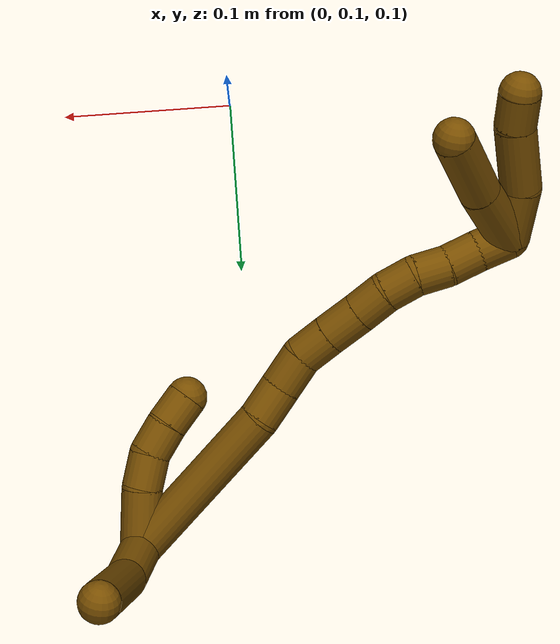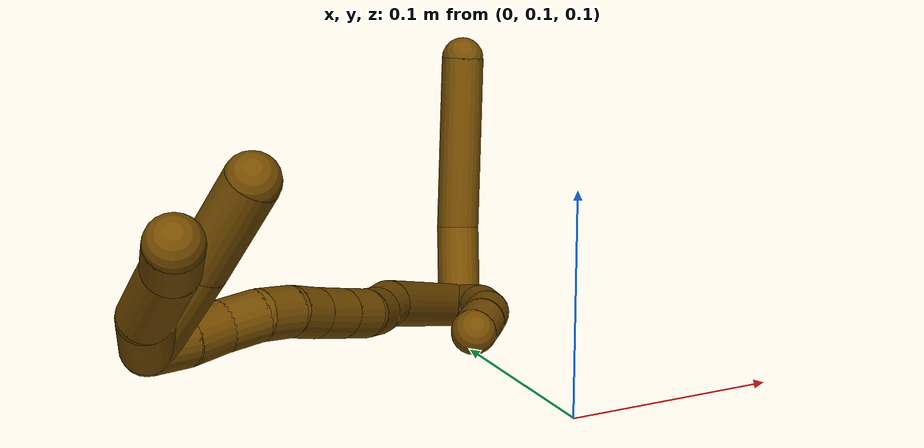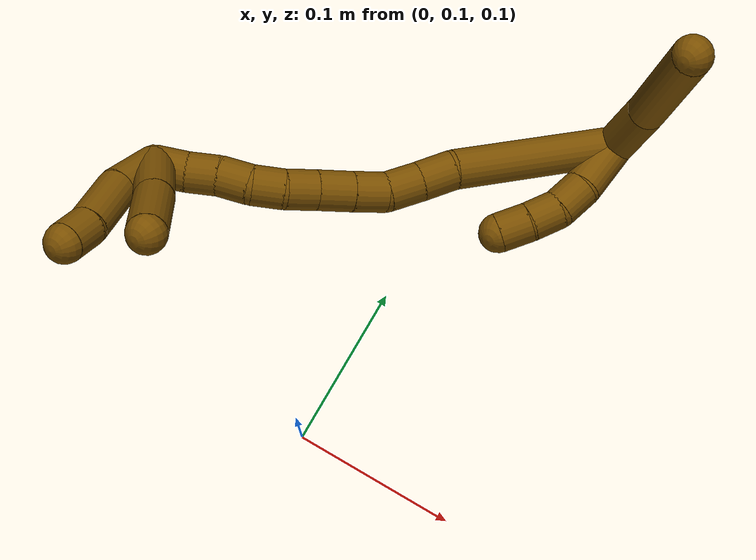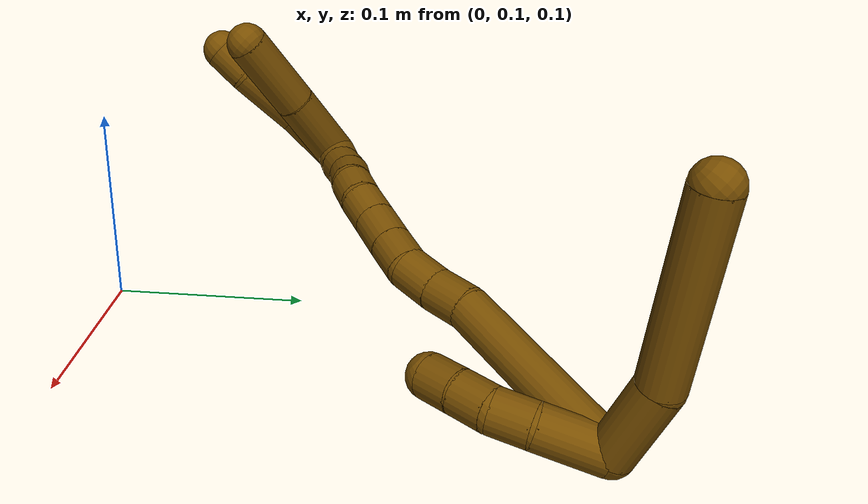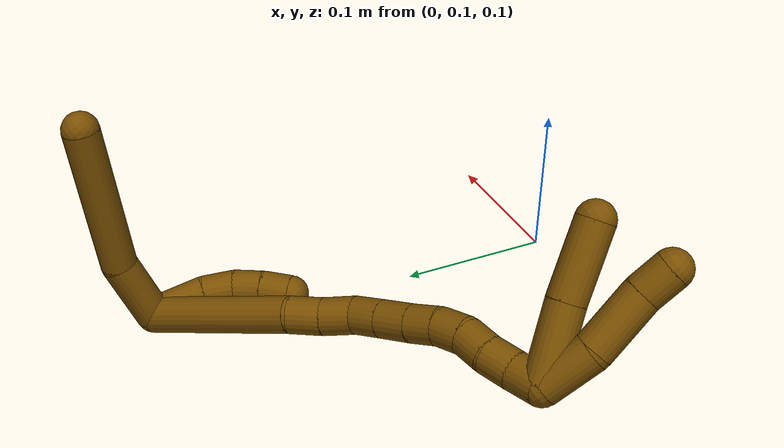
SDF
<sdf version="1.7">
 <world name="default">
  <model name="12">
   <static>0</static>
   <link name="12">
    <collision name="collision-cylinder-e_1_2_8">
     <pose>0.000602 0.022915 0.005943 -1.31703 0.025403 -0.019655</pose>
     <geometry><cylinder><radius>0.0125</radius><length>0.047362</length></cylinder></geometry>
     <surface>
      <friction><ode><mu>1.16</mu><mu2>1.16</mu2><slip1>0</slip1><slip2>0</slip2></ode></friction>
      <contact><ode><kp>1e+06</kp><kd>1</kd><max_vel>0</max_vel><min_depth>0.001</min_depth></ode></contact>
     </surface>
    </collision>
    <visual name="visual-cylinder-e_1_2_8">
     <pose>0.000602 0.022915 0.005943 -1.31703 0.025403 -0.019655</pose>
     <geometry><cylinder><radius>0.0125</radius><length>0.047362</length></cylinder></geometry>
     <material><ambient>0.466667 0.301961 0 1</ambient></material>
    </visual>
    <collision name="collision-cylinder-e_2_8_6">
     <pose>0.002314 0.089545 0.038747 -1.01981 0.021652 -0.012109</pose>
     <geometry><cylinder><radius>0.0125</radius><length>0.102638</length></cylinder></geometry>
     <surface>
      <friction><ode><mu>1.16</mu><mu2>1.16</mu2><slip1>0</slip1><slip2>0</slip2></ode></friction>
      <contact><ode><kp>1e+06</kp><kd>1</kd><max_vel>0</max_vel><min_depth>0.001</min_depth></ode></contact>
     </surface>
    </collision>
    <visual name="visual-cylinder-e_2_8_6">
     <pose>0.002314 0.089545 0.038747 -1.01981 0.021652 -0.012109</pose>
     <geometry><cylinder><radius>0.0125</radius><length>0.102638</length></cylinder></geometry>
     <material><ambient>0.466667 0.301961 0 1</ambient></material>
    </visual>
    <collision name="collision-cylinder-e_1_2_9">
     <pose>0.003119 -0.007384 0.017115 0.407317 0.165806 0.034318</pose>
     <geometry><cylinder><radius>0.0125</radius><length>0.037799</length></cylinder></geometry>
     <surface>
      <friction><ode><mu>1.16</mu><mu2>1.16</mu2><slip1>0</slip1><slip2>0</slip2></ode></friction>
      <contact><ode><kp>1e+06</kp><kd>1</kd><max_vel>0</max_vel><min_depth>0.001</min_depth></ode></contact>
     </surface>
    </collision>
    <visual name="visual-cylinder-e_1_2_9">
     <pose>0.003119 -0.007384 0.017115 0.407317 0.165806 0.034318</pose>
     <geometry><cylinder><radius>0.0125</radius><length>0.037799</length></cylinder></geometry>
     <material><ambient>0.466667 0.301961 0 1</ambient></material>
    </visual>
    <collision name="collision-cylinder-e_2_9_10">
     <pose>0.006152 -0.02027 0.043489 0.536108 -0.008018 -0.002202</pose>
     <geometry><cylinder><radius>0.0125</radius><length>0.021539</length></cylinder></geometry>
     <surface>
      <friction><ode><mu>1.16</mu><mu2>1.16</mu2><slip1>0</slip1><slip2>0</slip2></ode></friction>
      <contact><ode><kp>1e+06</kp><kd>1</kd><max_vel>0</max_vel><min_depth>0.001</min_depth></ode></contact>
     </surface>
    </collision>
    <visual name="visual-cylinder-e_2_9_10">
     <pose>0.006152 -0.02027 0.043489 0.536108 -0.008018 -0.002202</pose>
     <geometry><cylinder><radius>0.0125</radius><length>0.021539</length></cylinder></geometry>
     <material><ambient>0.466667 0.301961 0 1</ambient></material>
    </visual>
    <collision name="collision-cylinder-e_3_10_11">
     <pose>0.002904 -0.03119 0.060708 0.597715 -0.31722 -0.098479</pose>
     <geometry><cylinder><radius>0.0125</radius><length>0.020272</length></cylinder></geometry>
     <surface>
      <friction><ode><mu>1.16</mu><mu2>1.16</mu2><slip1>0</slip1><slip2>0</slip2></ode></friction>
      <contact><ode><kp>1e+06</kp><kd>1</kd><max_vel>0</max_vel><min_depth>0.001</min_depth></ode></contact>
     </surface>
    </collision>
    <visual name="visual-cylinder-e_3_10_11">
     <pose>0.002904 -0.03119 0.060708 0.597715 -0.31722 -0.098479</pose>
     <geometry><cylinder><radius>0.0125</radius><length>0.020272</length></cylinder></geometry>
     <material><ambient>0.466667 0.301961 0 1</ambient></material>
    </visual>
    <collision name="collision-cylinder-e_4_11_5">
     <pose>-0.004301 -0.042593 0.075864 0.693713 -0.407846 -0.149225</pose>
     <geometry><cylinder><radius>0.0125</radius><length>0.020389</length></cylinder></geometry>
     <surface>
      <friction><ode><mu>1.16</mu><mu2>1.16</mu2><slip1>0</slip1><slip2>0</slip2></ode></friction>
      <contact><ode><kp>1e+06</kp><kd>1</kd><max_vel>0</max_vel><min_depth>0.001</min_depth></ode></contact>
     </surface>
    </collision>
    <visual name="visual-cylinder-e_4_11_5">
     <pose>-0.004301 -0.042593 0.075864 0.693713 -0.407846 -0.149225</pose>
     <geometry><cylinder><radius>0.0125</radius><length>0.020389</length></cylinder></geometry>
     <material><ambient>0.466667 0.301961 0 1</ambient></material>
    </visual>
    <collision name="collision-cylinder-e_1_2_12">
     <pose>-0.027369 -0.016895 0.044856 0.36022 -0.518812 -0.096569</pose>
     <geometry><cylinder><radius>0.0125</radius><length>0.110391</length></cylinder></geometry>
     <surface>
      <friction><ode><mu>1.16</mu><mu2>1.16</mu2><slip1>0</slip1><slip2>0</slip2></ode></friction>
      <contact><ode><kp>1e+06</kp><kd>1</kd><max_vel>0</max_vel><min_depth>0.001</min_depth></ode></contact>
     </surface>
    </collision>
    <visual name="visual-cylinder-e_1_2_12">
     <pose>-0.027369 -0.016895 0.044856 0.36022 -0.518812 -0.096569</pose>
     <geometry><cylinder><radius>0.0125</radius><length>0.110391</length></cylinder></geometry>
     <material><ambient>0.466667 0.301961 0 1</ambient></material>
    </visual>
    <collision name="collision-cylinder-e_2_12_13">
     <pose>-0.059026 -0.039437 0.098733 0.559245 -0.383069 -0.111247</pose>
     <geometry><cylinder><radius>0.0125</radius><length>0.022948</length></cylinder></geometry>
     <surface>
      <friction><ode><mu>1.16</mu><mu2>1.16</mu2><slip1>0</slip1><slip2>0</slip2></ode></friction>
      <contact><ode><kp>1e+06</kp><kd>1</kd><max_vel>0</max_vel><min_depth>0.001</min_depth></ode></contact>
     </surface>
    </collision>
    <visual name="visual-cylinder-e_2_12_13">
     <pose>-0.059026 -0.039437 0.098733 0.559245 -0.383069 -0.111247</pose>
     <geometry><cylinder><radius>0.0125</radius><length>0.022948</length></cylinder></geometry>
     <material><ambient>0.466667 0.301961 0 1</ambient></material>
    </visual>
    <collision name="collision-cylinder-e_3_13_14">
     <pose>-0.067551 -0.049425 0.117366 0.424275 -0.381907 -0.083221</pose>
     <geometry><cylinder><radius>0.0125</radius><length>0.022732</length></cylinder></geometry>
     <surface>
      <friction><ode><mu>1.16</mu><mu2>1.16</mu2><slip1>0</slip1><slip2>0</slip2></ode></friction>
      <contact><ode><kp>1e+06</kp><kd>1</kd><max_vel>0</max_vel><min_depth>0.001</min_depth></ode></contact>
     </surface>
    </collision>
    <visual name="visual-cylinder-e_3_13_14">
     <pose>-0.067551 -0.049425 0.117366 0.424275 -0.381907 -0.083221</pose>
     <geometry><cylinder><radius>0.0125</radius><length>0.022732</length></cylinder></geometry>
     <material><ambient>0.466667 0.301961 0 1</ambient></material>
    </visual>
    <collision name="collision-cylinder-e_4_14_15">
     <pose>-0.078521 -0.056611 0.134584 0.357884 -0.692331 -0.130296</pose>
     <geometry><cylinder><radius>0.0125</radius><length>0.021098</length></cylinder></geometry>
     <surface>
      <friction><ode><mu>1.16</mu><mu2>1.16</mu2><slip1>0</slip1><slip2>0</slip2></ode></friction>
      <contact><ode><kp>1e+06</kp><kd>1</kd><max_vel>0</max_vel><min_depth>0.001</min_depth></ode></contact>
     </surface>
    </collision>
    <visual name="visual-cylinder-e_4_14_15">
     <pose>-0.078521 -0.056611 0.134584 0.357884 -0.692331 -0.130296</pose>
     <geometry><cylinder><radius>0.0125</radius><length>0.021098</length></cylinder></geometry>
     <material><ambient>0.466667 0.301961 0 1</ambient></material>
    </visual>
    <collision name="collision-cylinder-e_5_15_16">
     <pose>-0.092669 -0.062378 0.150278 0.346708 -0.711534 -0.129952</pose>
     <geometry><cylinder><radius>0.0125</radius><length>0.022709</length></cylinder></geometry>
     <surface>
      <friction><ode><mu>1.16</mu><mu2>1.16</mu2><slip1>0</slip1><slip2>0</slip2></ode></friction>
      <contact><ode><kp>1e+06</kp><kd>1</kd><max_vel>0</max_vel><min_depth>0.001</min_depth></ode></contact>
     </surface>
    </collision>
    <visual name="visual-cylinder-e_5_15_16">
     <pose>-0.092669 -0.062378 0.150278 0.346708 -0.711534 -0.129952</pose>
     <geometry><cylinder><radius>0.0125</radius><length>0.022709</length></cylinder></geometry>
     <material><ambient>0.466667 0.301961 0 1</ambient></material>
    </visual>
    <collision name="collision-cylinder-e_6_16_17">
     <pose>-0.106382 -0.067689 0.165803 0.310807 -0.678552 -0.11047</pose>
     <geometry><cylinder><radius>0.0125</radius><length>0.020069</length></cylinder></geometry>
     <surface>
      <friction><ode><mu>1.16</mu><mu2>1.16</mu2><slip1>0</slip1><slip2>0</slip2></ode></friction>
      <contact><ode><kp>1e+06</kp><kd>1</kd><max_vel>0</max_vel><min_depth>0.001</min_depth></ode></contact>
     </surface>
    </collision>
    <visual name="visual-cylinder-e_6_16_17">
     <pose>-0.106382 -0.067689 0.165803 0.310807 -0.678552 -0.11047</pose>
     <geometry><cylinder><radius>0.0125</radius><length>0.020069</length></cylinder></geometry>
     <material><ambient>0.466667 0.301961 0 1</ambient></material>
    </visual>
    <collision name="collision-cylinder-e_7_17_18">
     <pose>-0.120218 -0.073154 0.179081 0.484682 -0.851601 -0.223301</pose>
     <geometry><cylinder><radius>0.0125</radius><length>0.020039</length></cylinder></geometry>
     <surface>
      <friction><ode><mu>1.16</mu><mu2>1.16</mu2><slip1>0</slip1><slip2>0</slip2></ode></friction>
      <contact><ode><kp>1e+06</kp><kd>1</kd><max_vel>0</max_vel><min_depth>0.001</min_depth></ode></contact>
     </surface>
    </collision>
    <visual name="visual-cylinder-e_7_17_18">
     <pose>-0.120218 -0.073154 0.179081 0.484682 -0.851601 -0.223301</pose>
     <geometry><cylinder><radius>0.0125</radius><length>0.020039</length></cylinder></geometry>
     <material><ambient>0.466667 0.301961 0 1</ambient></material>
    </visual>
    <collision name="collision-cylinder-e_8_18_19">
     <pose>-0.136394 -0.080088 0.188166 0.871742 -1.04247 -0.522635</pose>
     <geometry><cylinder><radius>0.0125</radius><length>0.020001</length></cylinder></geometry>
     <surface>
      <friction><ode><mu>1.16</mu><mu2>1.16</mu2><slip1>0</slip1><slip2>0</slip2></ode></friction>
      <contact><ode><kp>1e+06</kp><kd>1</kd><max_vel>0</max_vel><min_depth>0.001</min_depth></ode></contact>
     </surface>
    </collision>
    <visual name="visual-cylinder-e_8_18_19">
     <pose>-0.136394 -0.080088 0.188166 0.871742 -1.04247 -0.522635</pose>
     <geometry><cylinder><radius>0.0125</radius><length>0.020001</length></cylinder></geometry>
     <material><ambient>0.466667 0.301961 0 1</ambient></material>
    </visual>
    <collision name="collision-cylinder-e_9_19_20">
     <pose>-0.152753 -0.088551 0.195792 0.810071 -0.88208 -0.399382</pose>
     <geometry><cylinder><radius>0.0125</radius><length>0.020003</length></cylinder></geometry>
     <surface>
      <friction><ode><mu>1.16</mu><mu2>1.16</mu2><slip1>0</slip1><slip2>0</slip2></ode></friction>
      <contact><ode><kp>1e+06</kp><kd>1</kd><max_vel>0</max_vel><min_depth>0.001</min_depth></ode></contact>
     </surface>
    </collision>
    <visual name="visual-cylinder-e_9_19_20">
     <pose>-0.152753 -0.088551 0.195792 0.810071 -0.88208 -0.399382</pose>
     <geometry><cylinder><radius>0.0125</radius><length>0.020003</length></cylinder></geometry>
     <material><ambient>0.466667 0.301961 0 1</ambient></material>
    </visual>
    <collision name="collision-cylinder-e_10_20_1">
     <pose>-0.168622 -0.096553 0.204881 0.625356 -0.951814 -0.330219</pose>
     <geometry><cylinder><radius>0.0125</radius><length>0.020008</length></cylinder></geometry>
     <surface>
      <friction><ode><mu>1.16</mu><mu2>1.16</mu2><slip1>0</slip1><slip2>0</slip2></ode></friction>
      <contact><ode><kp>1e+06</kp><kd>1</kd><max_vel>0</max_vel><min_depth>0.001</min_depth></ode></contact>
     </surface>
    </collision>
    <visual name="visual-cylinder-e_10_20_1">
     <pose>-0.168622 -0.096553 0.204881 0.625356 -0.951814 -0.330219</pose>
     <geometry><cylinder><radius>0.0125</radius><length>0.020008</length></cylinder></geometry>
     <material><ambient>0.466667 0.301961 0 1</ambient></material>
    </visual>
    <collision name="collision-cylinder-e_1_1_21">
     <pose>-0.165236 -0.089256 0.229082 -0.501744 0.47849 -0.124855</pose>
     <geometry><cylinder><radius>0.0125</radius><length>0.0501</length></cylinder></geometry>
     <surface>
      <friction><ode><mu>1.16</mu><mu2>1.16</mu2><slip1>0</slip1><slip2>0</slip2></ode></friction>
      <contact><ode><kp>1e+06</kp><kd>1</kd><max_vel>0</max_vel><min_depth>0.001</min_depth></ode></contact>
     </surface>
    </collision>
    <visual name="visual-cylinder-e_1_1_21">
     <pose>-0.165236 -0.089256 0.229082 -0.501744 0.47849 -0.124855</pose>
     <geometry><cylinder><radius>0.0125</radius><length>0.0501</length></cylinder></geometry>
     <material><ambient>0.466667 0.301961 0 1</ambient></material>
    </visual>
    <collision name="collision-cylinder-e_2_21_4">
     <pose>-0.143389 -0.068757 0.269073 -0.446183 0.426144 -0.09809</pose>
     <geometry><cylinder><radius>0.0125</radius><length>0.0499</length></cylinder></geometry>
     <surface>
      <friction><ode><mu>1.16</mu><mu2>1.16</mu2><slip1>0</slip1><slip2>0</slip2></ode></friction>
      <contact><ode><kp>1e+06</kp><kd>1</kd><max_vel>0</max_vel><min_depth>0.001</min_depth></ode></contact>
     </surface>
    </collision>
    <visual name="visual-cylinder-e_2_21_4">
     <pose>-0.143389 -0.068757 0.269073 -0.446183 0.426144 -0.09809</pose>
     <geometry><cylinder><radius>0.0125</radius><length>0.0499</length></cylinder></geometry>
     <material><ambient>0.466667 0.301961 0 1</ambient></material>
    </visual>
    <collision name="collision-cylinder-e_1_1_22">
     <pose>-0.176782 -0.099842 0.227441 -0.006105 -0.000679 2e-06</pose>
     <geometry><cylinder><radius>0.0125</radius><length>0.035709</length></cylinder></geometry>
     <surface>
      <friction><ode><mu>1.16</mu><mu2>1.16</mu2><slip1>0</slip1><slip2>0</slip2></ode></friction>
      <contact><ode><kp>1e+06</kp><kd>1</kd><max_vel>0</max_vel><min_depth>0.001</min_depth></ode></contact>
     </surface>
    </collision>
    <visual name="visual-cylinder-e_1_1_22">
     <pose>-0.176782 -0.099842 0.227441 -0.006105 -0.000679 2e-06</pose>
     <geometry><cylinder><radius>0.0125</radius><length>0.035709</length></cylinder></geometry>
     <material><ambient>0.466667 0.301961 0 1</ambient></material>
    </visual>
    <collision name="collision-cylinder-e_2_22_23">
     <pose>-0.171159 -0.097795 0.26559 -0.095175 0.269709 -0.012923</pose>
     <geometry><cylinder><radius>0.0125</radius><length>0.042304</length></cylinder></geometry>
     <surface>
      <friction><ode><mu>1.16</mu><mu2>1.16</mu2><slip1>0</slip1><slip2>0</slip2></ode></friction>
      <contact><ode><kp>1e+06</kp><kd>1</kd><max_vel>0</max_vel><min_depth>0.001</min_depth></ode></contact>
     </surface>
    </collision>
    <visual name="visual-cylinder-e_2_22_23">
     <pose>-0.171159 -0.097795 0.26559 -0.095175 0.269709 -0.012923</pose>
     <geometry><cylinder><radius>0.0125</radius><length>0.042304</length></cylinder></geometry>
     <material><ambient>0.466667 0.301961 0 1</ambient></material>
    </visual>
    <collision name="collision-cylinder-e_3_23_3">
     <pose>-0.16476 -0.095334 0.29684 -0.047775 0.069425 -0.001659</pose>
     <geometry><cylinder><radius>0.0125</radius><length>0.021987</length></cylinder></geometry>
     <surface>
      <friction><ode><mu>1.16</mu><mu2>1.16</mu2><slip1>0</slip1><slip2>0</slip2></ode></friction>
      <contact><ode><kp>1e+06</kp><kd>1</kd><max_vel>0</max_vel><min_depth>0.001</min_depth></ode></contact>
     </surface>
    </collision>
    <visual name="visual-cylinder-e_3_23_3">
     <pose>-0.16476 -0.095334 0.29684 -0.047775 0.069425 -0.001659</pose>
     <geometry><cylinder><radius>0.0125</radius><length>0.021987</length></cylinder></geometry>
     <material><ambient>0.466667 0.301961 0 1</ambient></material>
    </visual>
    <collision name="collision-sphere-3">
     <pose>-0.163997 -0.09481 0.307794 0 -0 0</pose>
     <geometry><sphere><radius>0.0125</radius></sphere></geometry>
     <surface>
      <friction><ode><mu>1.16</mu><mu2>1.16</mu2><slip1>0</slip1><slip2>0</slip2></ode></friction>
      <contact><ode><kp>1e+06</kp><kd>1</kd><max_vel>0</max_vel><min_depth>0.001</min_depth></ode></contact>
     </surface>
    </collision>
    <visual name="visual-sphere-3">
     <pose>-0.163997 -0.09481 0.307794 0 -0 0</pose>
     <geometry><sphere><radius>0.0125</radius></sphere></geometry>
     <material><ambient>0.466667 0.301961 0 1</ambient></material>
    </visual>
    <collision name="collision-sphere-23">
     <pose>-0.165523 -0.095858 0.285885 0 -0 0</pose>
     <geometry><sphere><radius>0.0125</radius></sphere></geometry>
     <surface>
      <friction><ode><mu>1.16</mu><mu2>1.16</mu2><slip1>0</slip1><slip2>0</slip2></ode></friction>
      <contact><ode><kp>1e+06</kp><kd>1</kd><max_vel>0</max_vel><min_depth>0.001</min_depth></ode></contact>
     </surface>
    </collision>
    <visual name="visual-sphere-23">
     <pose>-0.165523 -0.095858 0.285885 0 -0 0</pose>
     <geometry><sphere><radius>0.0125</radius></sphere></geometry>
     <material><ambient>0.466667 0.301961 0 1</ambient></material>
    </visual>
    <collision name="collision-sphere-22">
     <pose>-0.176795 -0.099733 0.245295 0 -0 0</pose>
     <geometry><sphere><radius>0.0125</radius></sphere></geometry>
     <surface>
      <friction><ode><mu>1.16</mu><mu2>1.16</mu2><slip1>0</slip1><slip2>0</slip2></ode></friction>
      <contact><ode><kp>1e+06</kp><kd>1</kd><max_vel>0</max_vel><min_depth>0.001</min_depth></ode></contact>
     </surface>
    </collision>
    <visual name="visual-sphere-22">
     <pose>-0.176795 -0.099733 0.245295 0 -0 0</pose>
     <geometry><sphere><radius>0.0125</radius></sphere></geometry>
     <material><ambient>0.466667 0.301961 0 1</ambient></material>
    </visual>
    <collision name="collision-sphere-4">
     <pose>-0.133075 -0.058954 0.289567 0 -0 0</pose>
     <geometry><sphere><radius>0.0125</radius></sphere></geometry>
     <surface>
      <friction><ode><mu>1.16</mu><mu2>1.16</mu2><slip1>0</slip1><slip2>0</slip2></ode></friction>
      <contact><ode><kp>1e+06</kp><kd>1</kd><max_vel>0</max_vel><min_depth>0.001</min_depth></ode></contact>
     </surface>
    </collision>
    <visual name="visual-sphere-4">
     <pose>-0.133075 -0.058954 0.289567 0 -0 0</pose>
     <geometry><sphere><radius>0.0125</radius></sphere></geometry>
     <material><ambient>0.466667 0.301961 0 1</ambient></material>
    </visual>
    <collision name="collision-sphere-21">
     <pose>-0.153702 -0.078561 0.248578 0 -0 0</pose>
     <geometry><sphere><radius>0.0125</radius></sphere></geometry>
     <surface>
      <friction><ode><mu>1.16</mu><mu2>1.16</mu2><slip1>0</slip1><slip2>0</slip2></ode></friction>
      <contact><ode><kp>1e+06</kp><kd>1</kd><max_vel>0</max_vel><min_depth>0.001</min_depth></ode></contact>
     </surface>
    </collision>
    <visual name="visual-sphere-21">
     <pose>-0.153702 -0.078561 0.248578 0 -0 0</pose>
     <geometry><sphere><radius>0.0125</radius></sphere></geometry>
     <material><ambient>0.466667 0.301961 0 1</ambient></material>
    </visual>
    <collision name="collision-sphere-1">
     <pose>-0.17677 -0.099951 0.209586 0 -0 0</pose>
     <geometry><sphere><radius>0.0125</radius></sphere></geometry>
     <surface>
      <friction><ode><mu>1.16</mu><mu2>1.16</mu2><slip1>0</slip1><slip2>0</slip2></ode></friction>
      <contact><ode><kp>1e+06</kp><kd>1</kd><max_vel>0</max_vel><min_depth>0.001</min_depth></ode></contact>
     </surface>
    </collision>
    <visual name="visual-sphere-1">
     <pose>-0.17677 -0.099951 0.209586 0 -0 0</pose>
     <geometry><sphere><radius>0.0125</radius></sphere></geometry>
     <material><ambient>0.466667 0.301961 0 1</ambient></material>
    </visual>
    <collision name="collision-sphere-11">
     <pose>-0.000258 -0.03661 0.068669 0 -0 0</pose>
     <geometry><sphere><radius>0.0125</radius></sphere></geometry>
     <surface>
      <friction><ode><mu>1.16</mu><mu2>1.16</mu2><slip1>0</slip1><slip2>0</slip2></ode></friction>
      <contact><ode><kp>1e+06</kp><kd>1</kd><max_vel>0</max_vel><min_depth>0.001</min_depth></ode></contact>
     </surface>
    </collision>
    <visual name="visual-sphere-11">
     <pose>-0.000258 -0.03661 0.068669 0 -0 0</pose>
     <geometry><sphere><radius>0.0125</radius></sphere></geometry>
     <material><ambient>0.466667 0.301961 0 1</ambient></material>
    </visual>
    <collision name="collision-sphere-10">
     <pose>0.006066 -0.02577 0.052748 0 -0 0</pose>
     <geometry><sphere><radius>0.0125</radius></sphere></geometry>
     <surface>
      <friction><ode><mu>1.16</mu><mu2>1.16</mu2><slip1>0</slip1><slip2>0</slip2></ode></friction>
      <contact><ode><kp>1e+06</kp><kd>1</kd><max_vel>0</max_vel><min_depth>0.001</min_depth></ode></contact>
     </surface>
    </collision>
    <visual name="visual-sphere-10">
     <pose>0.006066 -0.02577 0.052748 0 -0 0</pose>
     <geometry><sphere><radius>0.0125</radius></sphere></geometry>
     <material><ambient>0.466667 0.301961 0 1</ambient></material>
    </visual>
    <collision name="collision-sphere-6">
     <pose>0.003425 0.133259 0.065607 0 -0 0</pose>
     <geometry><sphere><radius>0.0125</radius></sphere></geometry>
     <surface>
      <friction><ode><mu>1.16</mu><mu2>1.16</mu2><slip1>0</slip1><slip2>0</slip2></ode></friction>
      <contact><ode><kp>1e+06</kp><kd>1</kd><max_vel>0</max_vel><min_depth>0.001</min_depth></ode></contact>
     </surface>
    </collision>
    <visual name="visual-sphere-6">
     <pose>0.003425 0.133259 0.065607 0 -0 0</pose>
     <geometry><sphere><radius>0.0125</radius></sphere></geometry>
     <material><ambient>0.466667 0.301961 0 1</ambient></material>
    </visual>
    <collision name="collision-sphere-9">
     <pose>0.006239 -0.014769 0.034231 0 -0 0</pose>
     <geometry><sphere><radius>0.0125</radius></sphere></geometry>
     <surface>
      <friction><ode><mu>1.16</mu><mu2>1.16</mu2><slip1>0</slip1><slip2>0</slip2></ode></friction>
      <contact><ode><kp>1e+06</kp><kd>1</kd><max_vel>0</max_vel><min_depth>0.001</min_depth></ode></contact>
     </surface>
    </collision>
    <visual name="visual-sphere-9">
     <pose>0.006239 -0.014769 0.034231 0 -0 0</pose>
     <geometry><sphere><radius>0.0125</radius></sphere></geometry>
     <material><ambient>0.466667 0.301961 0 1</ambient></material>
    </visual>
    <collision name="collision-sphere-2">
     <geometry><sphere><radius>0.0125</radius></sphere></geometry>
     <surface>
      <friction><ode><mu>1.16</mu><mu2>1.16</mu2><slip1>0</slip1><slip2>0</slip2></ode></friction>
      <contact><ode><kp>1e+06</kp><kd>1</kd><max_vel>0</max_vel><min_depth>0.001</min_depth></ode></contact>
     </surface>
    </collision>
    <visual name="visual-sphere-2">
     <geometry><sphere><radius>0.0125</radius></sphere></geometry>
     <material><ambient>0.466667 0.301961 0 1</ambient></material>
    </visual>
    <collision name="collision-sphere-19">
     <pose>-0.145031 -0.083947 0.19141 0 -0 0</pose>
     <geometry><sphere><radius>0.0125</radius></sphere></geometry>
     <surface>
      <friction><ode><mu>1.16</mu><mu2>1.16</mu2><slip1>0</slip1><slip2>0</slip2></ode></friction>
      <contact><ode><kp>1e+06</kp><kd>1</kd><max_vel>0</max_vel><min_depth>0.001</min_depth></ode></contact>
     </surface>
    </collision>
    <visual name="visual-sphere-19">
     <pose>-0.145031 -0.083947 0.19141 0 -0 0</pose>
     <geometry><sphere><radius>0.0125</radius></sphere></geometry>
     <material><ambient>0.466667 0.301961 0 1</ambient></material>
    </visual>
    <collision name="collision-sphere-8">
     <pose>0.001203 0.04583 0.011886 0 -0 0</pose>
     <geometry><sphere><radius>0.0125</radius></sphere></geometry>
     <surface>
      <friction><ode><mu>1.16</mu><mu2>1.16</mu2><slip1>0</slip1><slip2>0</slip2></ode></friction>
      <contact><ode><kp>1e+06</kp><kd>1</kd><max_vel>0</max_vel><min_depth>0.001</min_depth></ode></contact>
     </surface>
    </collision>
    <visual name="visual-sphere-8">
     <pose>0.001203 0.04583 0.011886 0 -0 0</pose>
     <geometry><sphere><radius>0.0125</radius></sphere></geometry>
     <material><ambient>0.466667 0.301961 0 1</ambient></material>
    </visual>
    <collision name="collision-sphere-5">
     <pose>-0.008345 -0.048577 0.08306 0 -0 0</pose>
     <geometry><sphere><radius>0.0125</radius></sphere></geometry>
     <surface>
      <friction><ode><mu>1.16</mu><mu2>1.16</mu2><slip1>0</slip1><slip2>0</slip2></ode></friction>
      <contact><ode><kp>1e+06</kp><kd>1</kd><max_vel>0</max_vel><min_depth>0.001</min_depth></ode></contact>
     </surface>
    </collision>
    <visual name="visual-sphere-5">
     <pose>-0.008345 -0.048577 0.08306 0 -0 0</pose>
     <geometry><sphere><radius>0.0125</radius></sphere></geometry>
     <material><ambient>0.466667 0.301961 0 1</ambient></material>
    </visual>
    <collision name="collision-sphere-12">
     <pose>-0.054737 -0.03379 0.089712 0 -0 0</pose>
     <geometry><sphere><radius>0.0125</radius></sphere></geometry>
     <surface>
      <friction><ode><mu>1.16</mu><mu2>1.16</mu2><slip1>0</slip1><slip2>0</slip2></ode></friction>
      <contact><ode><kp>1e+06</kp><kd>1</kd><max_vel>0</max_vel><min_depth>0.001</min_depth></ode></contact>
     </surface>
    </collision>
    <visual name="visual-sphere-12">
     <pose>-0.054737 -0.03379 0.089712 0 -0 0</pose>
     <geometry><sphere><radius>0.0125</radius></sphere></geometry>
     <material><ambient>0.466667 0.301961 0 1</ambient></material>
    </visual>
    <collision name="collision-sphere-13">
     <pose>-0.063315 -0.045083 0.107754 0 -0 0</pose>
     <geometry><sphere><radius>0.0125</radius></sphere></geometry>
     <surface>
      <friction><ode><mu>1.16</mu><mu2>1.16</mu2><slip1>0</slip1><slip2>0</slip2></ode></friction>
      <contact><ode><kp>1e+06</kp><kd>1</kd><max_vel>0</max_vel><min_depth>0.001</min_depth></ode></contact>
     </surface>
    </collision>
    <visual name="visual-sphere-13">
     <pose>-0.063315 -0.045083 0.107754 0 -0 0</pose>
     <geometry><sphere><radius>0.0125</radius></sphere></geometry>
     <material><ambient>0.466667 0.301961 0 1</ambient></material>
    </visual>
    <collision name="collision-sphere-14">
     <pose>-0.071787 -0.053767 0.126979 0 -0 0</pose>
     <geometry><sphere><radius>0.0125</radius></sphere></geometry>
     <surface>
      <friction><ode><mu>1.16</mu><mu2>1.16</mu2><slip1>0</slip1><slip2>0</slip2></ode></friction>
      <contact><ode><kp>1e+06</kp><kd>1</kd><max_vel>0</max_vel><min_depth>0.001</min_depth></ode></contact>
     </surface>
    </collision>
    <visual name="visual-sphere-14">
     <pose>-0.071787 -0.053767 0.126979 0 -0 0</pose>
     <geometry><sphere><radius>0.0125</radius></sphere></geometry>
     <material><ambient>0.466667 0.301961 0 1</ambient></material>
    </visual>
    <collision name="collision-sphere-15">
     <pose>-0.085254 -0.059456 0.14219 0 -0 0</pose>
     <geometry><sphere><radius>0.0125</radius></sphere></geometry>
     <surface>
      <friction><ode><mu>1.16</mu><mu2>1.16</mu2><slip1>0</slip1><slip2>0</slip2></ode></friction>
      <contact><ode><kp>1e+06</kp><kd>1</kd><max_vel>0</max_vel><min_depth>0.001</min_depth></ode></contact>
     </surface>
    </collision>
    <visual name="visual-sphere-15">
     <pose>-0.085254 -0.059456 0.14219 0 -0 0</pose>
     <geometry><sphere><radius>0.0125</radius></sphere></geometry>
     <material><ambient>0.466667 0.301961 0 1</ambient></material>
    </visual>
    <collision name="collision-sphere-16">
     <pose>-0.100083 -0.0653 0.158366 0 -0 0</pose>
     <geometry><sphere><radius>0.0125</radius></sphere></geometry>
     <surface>
      <friction><ode><mu>1.16</mu><mu2>1.16</mu2><slip1>0</slip1><slip2>0</slip2></ode></friction>
      <contact><ode><kp>1e+06</kp><kd>1</kd><max_vel>0</max_vel><min_depth>0.001</min_depth></ode></contact>
     </surface>
    </collision>
    <visual name="visual-sphere-16">
     <pose>-0.100083 -0.0653 0.158366 0 -0 0</pose>
     <geometry><sphere><radius>0.0125</radius></sphere></geometry>
     <material><ambient>0.466667 0.301961 0 1</ambient></material>
    </visual>
    <collision name="collision-sphere-17">
     <pose>-0.11268 -0.070078 0.173241 0 -0 0</pose>
     <geometry><sphere><radius>0.0125</radius></sphere></geometry>
     <surface>
      <friction><ode><mu>1.16</mu><mu2>1.16</mu2><slip1>0</slip1><slip2>0</slip2></ode></friction>
      <contact><ode><kp>1e+06</kp><kd>1</kd><max_vel>0</max_vel><min_depth>0.001</min_depth></ode></contact>
     </surface>
    </collision>
    <visual name="visual-sphere-17">
     <pose>-0.11268 -0.070078 0.173241 0 -0 0</pose>
     <geometry><sphere><radius>0.0125</radius></sphere></geometry>
     <material><ambient>0.466667 0.301961 0 1</ambient></material>
    </visual>
    <collision name="collision-sphere-18">
     <pose>-0.127757 -0.076229 0.184922 0 -0 0</pose>
     <geometry><sphere><radius>0.0125</radius></sphere></geometry>
     <surface>
      <friction><ode><mu>1.16</mu><mu2>1.16</mu2><slip1>0</slip1><slip2>0</slip2></ode></friction>
      <contact><ode><kp>1e+06</kp><kd>1</kd><max_vel>0</max_vel><min_depth>0.001</min_depth></ode></contact>
     </surface>
    </collision>
    <visual name="visual-sphere-18">
     <pose>-0.127757 -0.076229 0.184922 0 -0 0</pose>
     <geometry><sphere><radius>0.0125</radius></sphere></geometry>
     <material><ambient>0.466667 0.301961 0 1</ambient></material>
    </visual>
    <collision name="collision-sphere-20">
     <pose>-0.160474 -0.093155 0.200175 0 -0 0</pose>
     <geometry><sphere><radius>0.0125</radius></sphere></geometry>
     <surface>
      <friction><ode><mu>1.16</mu><mu2>1.16</mu2><slip1>0</slip1><slip2>0</slip2></ode></friction>
      <contact><ode><kp>1e+06</kp><kd>1</kd><max_vel>0</max_vel><min_depth>0.001</min_depth></ode></contact>
     </surface>
    </collision>
    <visual name="visual-sphere-20">
     <pose>-0.160474 -0.093155 0.200175 0 -0 0</pose>
     <geometry><sphere><radius>0.0125</radius></sphere></geometry>
     <material><ambient>0.466667 0.301961 0 1</ambient></material>
    </visual>
    <inertial>
     <pose>-0.073994 -0.032368 0.125654 0 -0 0</pose>
     <mass>0.75</mass>
     <inertia>
      <ixx>0.000237</ixx>
      <ixy>0</ixy>
      <ixz>0</ixz>
      <iyy>0.000209</iyy>
      <iyz>0</iyz>
      <izz>3.8e-05</izz>
     </inertia>
    </inertial>
   </link>
   <pose>0.073019 0.361368 0.067299 0.891558 0.030083 -0.287792</pose>
  </model>
 </world>
</sdf>
